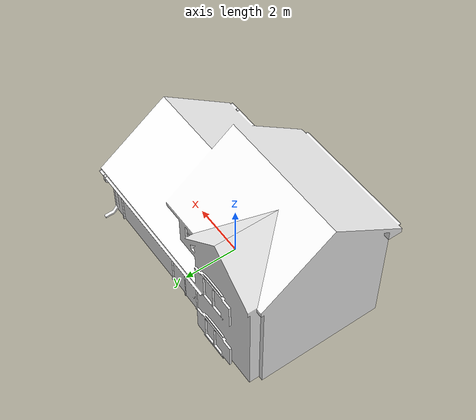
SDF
<?xml version="1.0"?>
<sdf version="1.4">
  <model name="House 3">
    <static>true</static>
    <link name="link">
      <collision name="collision">
        <geometry>
          <mesh>
            <uri>model://house_3/meshes/house_3.dae</uri>
          </mesh>
        </geometry>
      </collision>
      <visual name="visual">
        <geometry>
          <mesh>
            <uri>model://house_3/meshes/house_3.dae</uri>
          </mesh>
        </geometry>
        <material>
          <script>
            <uri>model://house_3/materials/scripts</uri>
            <uri>model://house_3/materials/textures</uri>
            <uri>model://house_1/materials/textures</uri>
            <name>House_3/Diffuse</name>
          </script>

          <shader type="normal_map_object_space">
            <normal_map>model://house_1/materials/textures/House_1_Normal.png</normal_map>
          </shader>

        </material>
      </visual>
    </link>
  </model>
</sdf>
